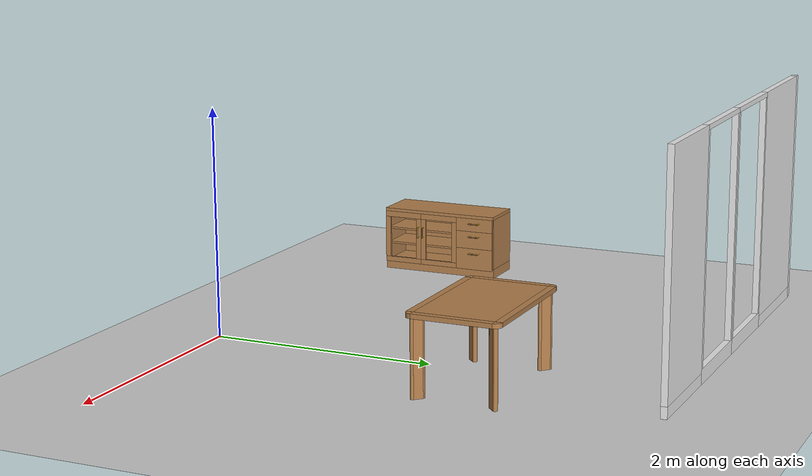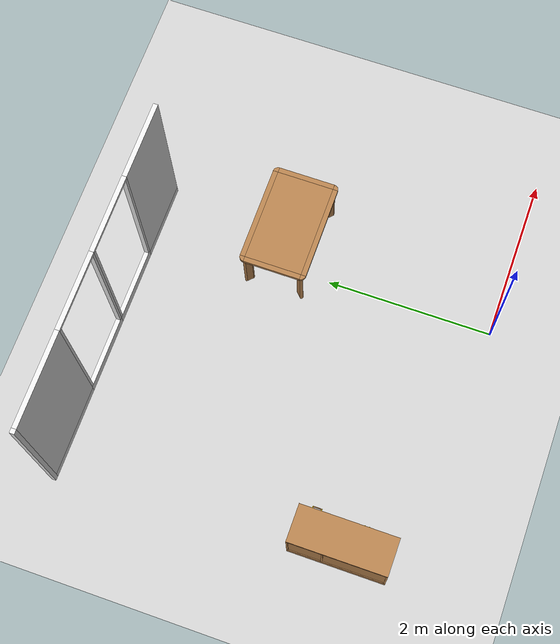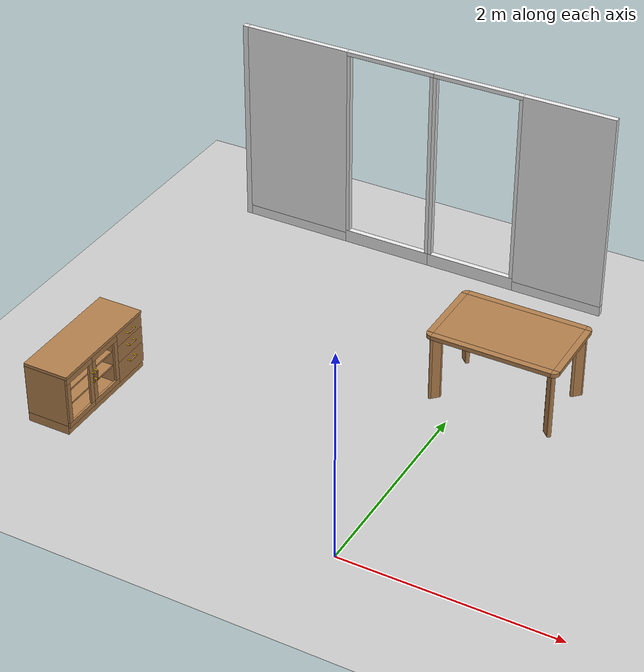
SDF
<sdf version="1.7">
 <world name="default">
  <model name="ground_plane">
   <static>1</static>
   <link name="link">
    <collision name="collision">
     <geometry><plane><normal>0 0 1</normal><size>100 100</size></plane></geometry>
     <surface>
      <contact><collide_bitmask>65535</collide_bitmask></contact>
      <friction><ode><mu>100</mu><mu2>50</mu2></ode></friction>
     </surface>
    </collision>
    <visual name="visual">
     <cast_shadows>0</cast_shadows>
     <geometry><plane><normal>0 0 1</normal><size>100 100</size></plane></geometry>
     <material>
      <script><uri>file://media/materials/scripts/gazebo.material</uri><name>Gazebo/Grey</name></script>
     </material>
    </visual>
   </link>
  </model>
  <model name="wall_right_d">
   <link name="link">
    <inertial>
     <mass>50</mass>
     <inertia><ixx>1</ixx><ixy>0</ixy><ixz>0</ixz><iyy>1</iyy><iyz>0</iyz><izz>1</izz></inertia>
    </inertial>
    <visual name="bottom_frame">
     <pose>0 0 0.05 0 -0 0</pose>
     <geometry><box><size>0.055 0.9 0.1</size></box></geometry>
     <material>
      <script><uri>model://base_materials/color/scripts</uri><name>hsr_color/white</name></script>
     </material>
    </visual>
    <collision name="collision_bottom_frame">
     <pose>0 0 0.05 0 -0 0</pose>
     <geometry><box><size>0.055 0.9 0.1</size></box></geometry>
    </collision>
    <visual name="wall">
     <pose>0 0 1.095 0 -0 0</pose>
     <geometry><box><size>0.055 0.9 1.99</size></box></geometry>
     <material>
      <script>
       <uri>model://base_materials/wall/scripts</uri>
       <uri>model://base_materials/wall/textures</uri>
       <name>wall/white_noise</name>
      </script>
     </material>
    </visual>
    <collision name="collision_wall">
     <pose>0 0 1.095 0 -0 0</pose>
     <geometry><box><size>0.055 0.9 1.99</size></box></geometry>
    </collision>
    <velocity_decay><linear>0</linear><angular>0</angular></velocity_decay>
   </link>
   <static>1</static>
   <pose>0.0875 4.175 0 0 -0 1.5708</pose>
  </model>
  <model name="wall_right_e">
   <link name="link">
    <inertial>
     <mass>50</mass>
     <inertia><ixx>1</ixx><ixy>0</ixy><ixz>0</ixz><iyy>1</iyy><iyz>0</iyz><izz>1</izz></inertia>
    </inertial>
    <visual name="bottom_frame">
     <pose>0 0 0.065 0 -0 0</pose>
     <geometry><box><size>0.055 0.9 0.13</size></box></geometry>
     <material>
      <script><uri>model://base_materials/color/scripts</uri><name>hsr_color/white</name></script>
     </material>
    </visual>
    <collision name="collision_bottom_frame">
     <pose>0 0 0.065 0 -0 0</pose>
     <geometry><box><size>0.055 0.9 0.13</size></box></geometry>
    </collision>
    <visual name="right_frame">
     <pose>0 0.4325 1.09 0 -0 0</pose>
     <geometry><box><size>0.055 0.035 1.92</size></box></geometry>
     <material>
      <script><uri>model://base_materials/color/scripts</uri><name>hsr_color/white</name></script>
     </material>
    </visual>
    <collision name="collision_right_frame">
     <pose>0 0.4325 1.09 0 -0 0</pose>
     <geometry><box><size>0.055 0.035 1.92</size></box></geometry>
    </collision>
    <visual name="left_frame">
     <pose>0 -0.4325 1.09 0 -0 0</pose>
     <geometry><box><size>0.055 0.035 1.92</size></box></geometry>
     <material>
      <script><uri>model://base_materials/color/scripts</uri><name>hsr_color/white</name></script>
     </material>
    </visual>
    <collision name="collision_left_frame">
     <pose>0 -0.4325 1.09 0 -0 0</pose>
     <geometry><box><size>0.055 0.035 1.92</size></box></geometry>
    </collision>
    <visual name="top_frame">
     <pose>0 0 2.07 0 -0 0</pose>
     <geometry><box><size>0.055 0.9 0.04</size></box></geometry>
     <material>
      <script><uri>model://base_materials/color/scripts</uri><name>hsr_color/white</name></script>
     </material>
    </visual>
    <collision name="collision_top_frame">
     <pose>0 0 2.07 0 -0 0</pose>
     <geometry><box><size>0.055 0.9 0.04</size></box></geometry>
    </collision>
    <velocity_decay><linear>0</linear><angular>0</angular></velocity_decay>
   </link>
   <static>1</static>
   <pose>-0.8125 4.175 0 0 -0 1.5708</pose>
  </model>
  <model name="wall_right_f">
   <link name="link">
    <inertial>
     <mass>50</mass>
     <inertia><ixx>1</ixx><ixy>0</ixy><ixz>0</ixz><iyy>1</iyy><iyz>0</iyz><izz>1</izz></inertia>
    </inertial>
    <visual name="bottom_frame">
     <pose>0 0 0.065 0 -0 0</pose>
     <geometry><box><size>0.055 0.9 0.13</size></box></geometry>
     <material>
      <script><uri>model://base_materials/color/scripts</uri><name>hsr_color/white</name></script>
     </material>
    </visual>
    <collision name="collision_bottom_frame">
     <pose>0 0 0.065 0 -0 0</pose>
     <geometry><box><size>0.055 0.9 0.13</size></box></geometry>
    </collision>
    <visual name="right_frame">
     <pose>0 0.4325 1.09 0 -0 0</pose>
     <geometry><box><size>0.055 0.035 1.92</size></box></geometry>
     <material>
      <script><uri>model://base_materials/color/scripts</uri><name>hsr_color/white</name></script>
     </material>
    </visual>
    <collision name="collision_right_frame">
     <pose>0 0.4325 1.09 0 -0 0</pose>
     <geometry><box><size>0.055 0.035 1.92</size></box></geometry>
    </collision>
    <visual name="left_frame">
     <pose>0 -0.4325 1.09 0 -0 0</pose>
     <geometry><box><size>0.055 0.035 1.92</size></box></geometry>
     <material>
      <script><uri>model://base_materials/color/scripts</uri><name>hsr_color/white</name></script>
     </material>
    </visual>
    <collision name="collision_left_frame">
     <pose>0 -0.4325 1.09 0 -0 0</pose>
     <geometry><box><size>0.055 0.035 1.92</size></box></geometry>
    </collision>
    <visual name="top_frame">
     <pose>0 0 2.07 0 -0 0</pose>
     <geometry><box><size>0.055 0.9 0.04</size></box></geometry>
     <material>
      <script><uri>model://base_materials/color/scripts</uri><name>hsr_color/white</name></script>
     </material>
    </visual>
    <collision name="collision_top_frame">
     <pose>0 0 2.07 0 -0 0</pose>
     <geometry><box><size>0.055 0.9 0.04</size></box></geometry>
    </collision>
    <velocity_decay><linear>0</linear><angular>0</angular></velocity_decay>
   </link>
   <static>1</static>
   <pose>-1.7125 4.175 0 0 -0 1.5708</pose>
  </model>
  <model name="wall_right_g">
   <link name="link">
    <inertial>
     <mass>50</mass>
     <inertia><ixx>1</ixx><ixy>0</ixy><ixz>0</ixz><iyy>1</iyy><iyz>0</iyz><izz>1</izz></inertia>
    </inertial>
    <visual name="bottom_frame">
     <pose>0 0 0.05 0 -0 0</pose>
     <geometry><box><size>0.055 1.075 0.1</size></box></geometry>
     <material>
      <script><uri>model://base_materials/color/scripts</uri><name>hsr_color/white</name></script>
     </material>
    </visual>
    <collision name="collision_bottom_frame">
     <pose>0 0 0.05 0 -0 0</pose>
     <geometry><box><size>0.055 1.075 0.1</size></box></geometry>
    </collision>
    <visual name="wall">
     <pose>0 0 1.095 0 -0 0</pose>
     <geometry><box><size>0.055 1.075 1.99</size></box></geometry>
     <material>
      <script>
       <uri>model://base_materials/wall/scripts</uri>
       <uri>model://base_materials/wall/textures</uri>
       <name>wall/white_noise</name>
      </script>
     </material>
    </visual>
    <collision name="collision_wall">
     <pose>0 0 1.095 0 -0 0</pose>
     <geometry><box><size>0.055 1.075 1.99</size></box></geometry>
    </collision>
    <velocity_decay><linear>0</linear><angular>0</angular></velocity_decay>
   </link>
   <static>1</static>
   <pose>-2.7 4.175 0 0 -0 1.5708</pose>
  </model>
  <model name="wall_back_a">
   <link name="link">
    <inertial>
     <mass>50</mass>
     <inertia><ixx>1</ixx><ixy>0</ixy><ixz>0</ixz><iyy>1</iyy><iyz>0</iyz><izz>1</izz></inertia>
    </inertial>
    <visual name="_frame">
     <pose>0 0 1.045 0 -0 0</pose>
     <geometry><box><size>0.055 0.055 2.09</size></box></geometry>
     <material>
      <script><uri>model://base_materials/color/scripts</uri><name>hsr_color/white</name></script>
     </material>
    </visual>
    <collision name="collision_frame">
     <pose>0 0 1.045 0 -0 0</pose>
     <geometry><box><size>0.055 0.055 2.09</size></box></geometry>
    </collision>
    <velocity_decay><linear>0</linear><angular>0</angular></velocity_decay>
   </link>
   <static>1</static>
   <pose>-3.265 4.175 0 0 -0 0</pose>
  </model>
  <model name="kitchen_table">
   <link name="link">
    <inertial>
     <mass>10</mass>
     <inertia><ixx>1</ixx><ixy>0</ixy><ixz>0</ixz><iyy>1</iyy><iyz>0</iyz><izz>1</izz></inertia>
    </inertial>
    <visual name="center_board">
     <pose>0 0 0.68 0 -0 0</pose>
     <geometry><box><size>0.68 1.13 0.04</size></box></geometry>
     <material>
      <script><uri>model://base_materials/wood/scripts/wood.material</uri><name>base_materials/wood</name></script>
     </material>
    </visual>
    <collision name="collision_center_board">
     <pose>0 0 0.68 0 -0 0</pose>
     <geometry><box><size>0.68 1.13 0.04</size></box></geometry>
    </collision>
    <visual name="front_board">
     <pose>0.37 0 0.68 0 -0 0</pose>
     <geometry><box><size>0.06 1.13 0.04</size></box></geometry>
     <material>
      <script><uri>model://base_materials/wood/scripts/wood.material</uri><name>base_materials/wood</name></script>
     </material>
    </visual>
    <collision name="collision_front_board">
     <pose>0.37 0 0.68 0 -0 0</pose>
     <geometry><box><size>0.06 1.13 0.04</size></box></geometry>
    </collision>
    <visual name="back_board">
     <pose>-0.37 0 0.68 0 -0 0</pose>
     <geometry><box><size>0.06 1.13 0.04</size></box></geometry>
     <material>
      <script><uri>model://base_materials/wood/scripts/wood.material</uri><name>base_materials/wood</name></script>
     </material>
    </visual>
    <collision name="collision_back_board">
     <pose>-0.37 0 0.68 0 -0 0</pose>
     <geometry><box><size>0.06 1.13 0.04</size></box></geometry>
    </collision>
    <visual name="right_board">
     <pose>0 0.595 0.68 0 -0 0</pose>
     <geometry><box><size>0.68 0.06 0.04</size></box></geometry>
     <material>
      <script><uri>model://base_materials/wood/scripts/wood.material</uri><name>base_materials/wood</name></script>
     </material>
    </visual>
    <collision name="collision_right_board">
     <pose>0 0.595 0.68 0 -0 0</pose>
     <geometry><box><size>0.68 0.06 0.04</size></box></geometry>
    </collision>
    <visual name="left_board">
     <pose>0 -0.595 0.68 0 -0 0</pose>
     <geometry><box><size>0.68 0.06 0.04</size></box></geometry>
     <material>
      <script><uri>model://base_materials/wood/scripts/wood.material</uri><name>base_materials/wood</name></script>
     </material>
    </visual>
    <collision name="collision_left_board">
     <pose>0 -0.595 0.68 0 -0 0</pose>
     <geometry><box><size>0.68 0.06 0.04</size></box></geometry>
    </collision>
    <visual name="front_right_corner_board">
     <pose>0.34 0.565 0.68 0 -0 0</pose>
     <geometry><cylinder><radius>0.06</radius><length>0.039</length></cylinder></geometry>
     <material>
      <script><uri>model://base_materials/wood/scripts/wood.material</uri><name>base_materials/wood</name></script>
     </material>
    </visual>
    <collision name="collision_front_right_corner_board">
     <pose>0.34 0.565 0.68 0 -0 0</pose>
     <geometry><cylinder><radius>0.06</radius><length>0.039</length></cylinder></geometry>
    </collision>
    <visual name="front_left_corner_board">
     <pose>0.34 -0.565 0.68 0 -0 0</pose>
     <geometry><cylinder><radius>0.06</radius><length>0.039</length></cylinder></geometry>
     <material>
      <script><uri>model://base_materials/wood/scripts/wood.material</uri><name>base_materials/wood</name></script>
     </material>
    </visual>
    <collision name="collision_front_left_corner_board">
     <pose>0.34 -0.565 0.68 0 -0 0</pose>
     <geometry><cylinder><radius>0.06</radius><length>0.039</length></cylinder></geometry>
    </collision>
    <visual name="front_back_right_corner_board">
     <pose>-0.34 0.565 0.68 0 -0 0</pose>
     <geometry><cylinder><radius>0.06</radius><length>0.039</length></cylinder></geometry>
     <material>
      <script><uri>model://base_materials/wood/scripts/wood.material</uri><name>base_materials/wood</name></script>
     </material>
    </visual>
    <collision name="collision_back_right_corner_board">
     <pose>-0.34 0.565 0.68 0 -0 0</pose>
     <geometry><cylinder><radius>0.06</radius><length>0.039</length></cylinder></geometry>
    </collision>
    <visual name="front_back_left_corner_board">
     <pose>-0.34 -0.565 0.68 0 -0 0</pose>
     <geometry><cylinder><radius>0.06</radius><length>0.039</length></cylinder></geometry>
     <material>
      <script><uri>model://base_materials/wood/scripts/wood.material</uri><name>base_materials/wood</name></script>
     </material>
    </visual>
    <collision name="collision_back_left_corner_board">
     <pose>-0.34 -0.565 0.68 0 -0 0</pose>
     <geometry><cylinder><radius>0.06</radius><length>0.039</length></cylinder></geometry>
    </collision>
    <visual name="front_left_corner_frame1">
     <pose>0.345858 -0.57086 0.33 0 -0 0</pose>
     <geometry><cylinder><radius>0.02</radius><length>0.66</length></cylinder></geometry>
     <material>
      <script><uri>model://base_materials/wood/scripts/wood.material</uri><name>base_materials/wood</name></script>
     </material>
    </visual>
    <collision name="collision_front_left_corner_frame1">
     <pose>0.345858 -0.57086 0.33 0 -0 0</pose>
     <geometry><cylinder><radius>0.02</radius><length>0.66</length></cylinder></geometry>
    </collision>
    <visual name="front_left_corner_frame2">
     <pose>0.317574 -0.54257 0.33 0 -0 0.7854</pose>
     <geometry><box><size>0.04 0.08 0.66</size></box></geometry>
     <material>
      <script><uri>model://base_materials/wood/scripts/wood.material</uri><name>base_materials/wood</name></script>
     </material>
    </visual>
    <collision name="collision_front_left_corner_frame2">
     <pose>0.317574 -0.54257 0.33 0 -0 0.7854</pose>
     <geometry><box><size>0.04 0.08 0.66</size></box></geometry>
    </collision>
    <visual name="front_left_corner_frame3">
     <pose>0.289289 -0.51429 0.33 0 -0 0</pose>
     <geometry><cylinder><radius>0.02</radius><length>0.66</length></cylinder></geometry>
     <material>
      <script><uri>model://base_materials/wood/scripts/wood.material</uri><name>base_materials/wood</name></script>
     </material>
    </visual>
    <collision name="collision_front_left_corner_frame3">
     <pose>0.289289 -0.51429 0.33 0 -0 0</pose>
     <geometry><cylinder><radius>0.02</radius><length>0.66</length></cylinder></geometry>
    </collision>
    <visual name="front_right_corner_frame1">
     <pose>0.345858 0.57086 0.33 0 -0 0</pose>
     <geometry><cylinder><radius>0.02</radius><length>0.66</length></cylinder></geometry>
     <material>
      <script><uri>model://base_materials/wood/scripts/wood.material</uri><name>base_materials/wood</name></script>
     </material>
    </visual>
    <collision name="collision_front_right_corner_frame1">
     <pose>0.345858 0.57086 0.33 0 -0 0</pose>
     <geometry><cylinder><radius>0.02</radius><length>0.66</length></cylinder></geometry>
    </collision>
    <visual name="front_right_corner_frame2">
     <pose>0.317574 0.54257 0.33 0 0 -0.7854</pose>
     <geometry><box><size>0.04 0.08 0.66</size></box></geometry>
     <material>
      <script><uri>model://base_materials/wood/scripts/wood.material</uri><name>base_materials/wood</name></script>
     </material>
    </visual>
    <collision name="collision_front_right_corner_frame2">
     <pose>0.317574 0.54257 0.33 0 0 -0.7854</pose>
     <geometry><box><size>0.04 0.08 0.66</size></box></geometry>
    </collision>
    <visual name="front_right_corner_frame3">
     <pose>0.289289 0.51429 0.33 0 -0 0</pose>
     <geometry><cylinder><radius>0.02</radius><length>0.66</length></cylinder></geometry>
     <material>
      <script><uri>model://base_materials/wood/scripts/wood.material</uri><name>base_materials/wood</name></script>
     </material>
    </visual>
    <collision name="collision_front_right_corner_frame3">
     <pose>0.289289 0.51429 0.33 0 -0 0</pose>
     <geometry><cylinder><radius>0.02</radius><length>0.66</length></cylinder></geometry>
    </collision>
    <visual name="back_left_corner_frame1">
     <pose>-0.345858 -0.57086 0.33 0 -0 0</pose>
     <geometry><cylinder><radius>0.02</radius><length>0.66</length></cylinder></geometry>
     <material>
      <script><uri>model://base_materials/wood/scripts/wood.material</uri><name>base_materials/wood</name></script>
     </material>
    </visual>
    <collision name="collision_back_left_corner_frame1">
     <pose>-0.345858 -0.57086 0.33 0 -0 0</pose>
     <geometry><cylinder><radius>0.02</radius><length>0.66</length></cylinder></geometry>
    </collision>
    <visual name="back_left_corner_frame2">
     <pose>-0.317574 -0.54257 0.33 0 0 -0.7854</pose>
     <geometry><box><size>0.04 0.08 0.66</size></box></geometry>
     <material>
      <script><uri>model://base_materials/wood/scripts/wood.material</uri><name>base_materials/wood</name></script>
     </material>
    </visual>
    <collision name="collision_back_left_corner_frame2">
     <pose>-0.317574 -0.54257 0.33 0 0 -0.7854</pose>
     <geometry><box><size>0.04 0.08 0.66</size></box></geometry>
    </collision>
    <visual name="back_left_corner_frame3">
     <pose>-0.289289 -0.51429 0.33 0 -0 0</pose>
     <geometry><cylinder><radius>0.02</radius><length>0.66</length></cylinder></geometry>
     <material>
      <script><uri>model://base_materials/wood/scripts/wood.material</uri><name>base_materials/wood</name></script>
     </material>
    </visual>
    <collision name="collision_back_left_corner_frame3">
     <pose>-0.289289 -0.51429 0.33 0 -0 0</pose>
     <geometry><cylinder><radius>0.02</radius><length>0.66</length></cylinder></geometry>
    </collision>
    <visual name="back_right_corner_frame1">
     <pose>-0.345858 0.57086 0.33 0 -0 0</pose>
     <geometry><cylinder><radius>0.02</radius><length>0.66</length></cylinder></geometry>
     <material>
      <script><uri>model://base_materials/wood/scripts/wood.material</uri><name>base_materials/wood</name></script>
     </material>
    </visual>
    <collision name="collision_back_right_corner_frame1">
     <pose>-0.345858 0.57086 0.33 0 -0 0</pose>
     <geometry><cylinder><radius>0.02</radius><length>0.66</length></cylinder></geometry>
    </collision>
    <visual name="back_right_corner_frame2">
     <pose>-0.317574 0.54257 0.33 0 -0 0.7854</pose>
     <geometry><box><size>0.04 0.08 0.66</size></box></geometry>
     <material>
      <script><uri>model://base_materials/wood/scripts/wood.material</uri><name>base_materials/wood</name></script>
     </material>
    </visual>
    <collision name="collision_back_right_corner_frame2">
     <pose>-0.317574 0.54257 0.33 0 -0 0.7854</pose>
     <geometry><box><size>0.04 0.08 0.66</size></box></geometry>
    </collision>
    <visual name="back_right_corner_frame3">
     <pose>-0.289289 0.51429 0.33 0 -0 0</pose>
     <geometry><cylinder><radius>0.02</radius><length>0.66</length></cylinder></geometry>
     <material>
      <script><uri>model://base_materials/wood/scripts/wood.material</uri><name>base_materials/wood</name></script>
     </material>
    </visual>
    <collision name="collision_back_right_corner_frame3">
     <pose>-0.289289 0.51429 0.33 0 -0 0</pose>
     <geometry><cylinder><radius>0.02</radius><length>0.66</length></cylinder></geometry>
    </collision>
    <velocity_decay><linear>0</linear><angular>0</angular></velocity_decay>
   </link>
   <static>1</static>
   <pose>0.29 2.6 0 0 0 -1.5708</pose>
  </model>
  <model name="living_sideboard">
   <link name="link">
    <inertial>
     <mass>10</mass>
     <inertia><ixx>1</ixx><ixy>0</ixy><ixz>0</ixz><iyy>1</iyy><iyz>0</iyz><izz>1</izz></inertia>
    </inertial>
    <visual name="left_board">
     <pose>-0.23 0.01 0.3375 0 -0 0</pose>
     <geometry><box><size>0.42 0.02 0.495</size></box></geometry>
     <material>
      <script><uri>model://base_materials/wood/scripts/wood.material</uri><name>base_materials/wood</name></script>
     </material>
    </visual>
    <collision name="collision_left_board">
     <pose>-0.23 0.01 0.3375 0 -0 0</pose>
     <geometry><box><size>0.42 0.02 0.495</size></box></geometry>
    </collision>
    <visual name="back_board">
     <pose>-0.42 0.575 0.2925 0 -0 0</pose>
     <geometry><box><size>0.02 1.11 0.585</size></box></geometry>
     <material>
      <script><uri>model://base_materials/wood/scripts/wood.material</uri><name>base_materials/wood</name></script>
     </material>
    </visual>
    <collision name="collision_back_board">
     <pose>-0.42 0.575 0.2925 0 -0 0</pose>
     <geometry><box><size>0.02 1.11 0.585</size></box></geometry>
    </collision>
    <visual name="right_board">
     <pose>-0.23 1.14 0.3375 0 -0 0</pose>
     <geometry><box><size>0.42 0.02 0.495</size></box></geometry>
     <material>
      <script><uri>model://base_materials/wood/scripts/wood.material</uri><name>base_materials/wood</name></script>
     </material>
    </visual>
    <collision name="collision_right_board">
     <pose>-0.23 1.14 0.3375 0 -0 0</pose>
     <geometry><box><size>0.42 0.02 0.495</size></box></geometry>
    </collision>
    <visual name="center_vertical_board1">
     <pose>-0.23 0.74 0.3375 0 -0 0</pose>
     <geometry><box><size>0.42 0.02 0.495</size></box></geometry>
     <material>
      <script><uri>model://base_materials/wood/scripts/wood.material</uri><name>base_materials/wood</name></script>
     </material>
    </visual>
    <collision name="collision_center_vertical_board1">
     <pose>-0.23 0.74 0.3375 0 -0 0</pose>
     <geometry><box><size>0.42 0.02 0.495</size></box></geometry>
    </collision>
    <visual name="top_board">
     <pose>-0.22 0.575 0.6 0 -0 0</pose>
     <geometry><box><size>0.44 1.15 0.03</size></box></geometry>
     <material>
      <script><uri>model://base_materials/wood/scripts/wood.material</uri><name>base_materials/wood</name></script>
     </material>
    </visual>
    <collision name="collision_top_board">
     <pose>-0.22 0.575 0.6 0 -0 0</pose>
     <geometry><box><size>0.44 1.15 0.03</size></box></geometry>
    </collision>
    <visual name="bottom_board">
     <pose>-0.23 0.575 0.045 0 -0 0</pose>
     <geometry><box><size>0.42 1.15 0.09</size></box></geometry>
     <material>
      <script><uri>model://base_materials/wood/scripts/wood.material</uri><name>base_materials/wood</name></script>
     </material>
    </visual>
    <collision name="collision_bottom_board">
     <pose>-0.23 0.575 0.045 0 -0 0</pose>
     <geometry><box><size>0.42 1.15 0.09</size></box></geometry>
    </collision>
    <visual name="1st_shelf">
     <pose>-0.225 0.37 0.259 0 -0 0</pose>
     <geometry><box><size>0.36 0.72 0.018</size></box></geometry>
     <material>
      <script><uri>model://base_materials/wood/scripts/wood.material</uri><name>base_materials/wood</name></script>
     </material>
    </visual>
    <collision name="collision_1st_shelf">
     <pose>-0.225 0.37 0.259 0 -0 0</pose>
     <geometry><box><size>0.36 0.72 0.018</size></box></geometry>
    </collision>
    <visual name="2nd_shelf">
     <pose>-0.225 0.37 0.407 0 -0 0</pose>
     <geometry><box><size>0.36 0.72 0.018</size></box></geometry>
     <material>
      <script><uri>model://base_materials/wood/scripts/wood.material</uri><name>base_materials/wood</name></script>
     </material>
    </visual>
    <collision name="collision_2nd_shelf">
     <pose>-0.225 0.37 0.407 0 -0 0</pose>
     <geometry><box><size>0.36 0.72 0.018</size></box></geometry>
    </collision>
    <visual name="1st_drawer">
     <pose>-0.2025 0.95 0.52 0 -0 0</pose>
     <geometry><box><size>0.405 0.38 0.13</size></box></geometry>
     <material>
      <script><uri>model://base_materials/wood/scripts/wood.material</uri><name>base_materials/wood</name></script>
     </material>
    </visual>
    <collision name="collision_1st_drawer">
     <pose>-0.2025 0.95 0.52 0 -0 0</pose>
     <geometry><box><size>0.405 0.38 0.13</size></box></geometry>
    </collision>
    <visual name="1st_drawer_handle_l1">
     <pose>0.015 0.9015 0.535 3.14159 1.57079 3.14159</pose>
     <geometry><cylinder><radius>0.006</radius><length>0.03</length></cylinder></geometry>
     <material>
      <ambient>1 0.84314 0 1</ambient>
      <diffuse>1 0.84314 0 1</diffuse>
      <specular>0.1 0.1 0.1 1</specular>
     </material>
    </visual>
    <collision name="collision_1st_drawer_handle_l1">
     <pose>0.015 0.9015 0.535 3.14159 1.57079 3.14159</pose>
     <geometry><cylinder><radius>0.006</radius><length>0.03</length></cylinder></geometry>
    </collision>
    <visual name="1st_drawer_handle_l2">
     <pose>0.03 0.9015 0.535 0 -0 0</pose>
     <geometry><sphere><radius>0.006</radius></sphere></geometry>
     <material>
      <ambient>1 0.84314 0 1</ambient>
      <diffuse>1 0.84314 0 1</diffuse>
      <specular>0.1 0.1 0.1 1</specular>
     </material>
    </visual>
    <collision name="collision_1st_drawer_handle_l2">
     <pose>0.03 0.9015 0.535 0 -0 0</pose>
     <geometry><sphere><radius>0.006</radius></sphere></geometry>
    </collision>
    <visual name="1st_drawer_handle_r1">
     <pose>0.015 0.9985 0.535 3.14159 1.57079 3.14159</pose>
     <geometry><cylinder><radius>0.006</radius><length>0.03</length></cylinder></geometry>
     <material>
      <ambient>1 0.84314 0 1</ambient>
      <diffuse>1 0.84314 0 1</diffuse>
      <specular>0.1 0.1 0.1 1</specular>
     </material>
    </visual>
    <collision name="collision_1st_drawer_handle_r1">
     <pose>0.015 0.9985 0.535 3.14159 1.57079 3.14159</pose>
     <geometry><cylinder><radius>0.006</radius><length>0.03</length></cylinder></geometry>
    </collision>
    <visual name="1st_drawer_handle_r2">
     <pose>0.03 0.9985 0.535 0 -0 0</pose>
     <geometry><sphere><radius>0.006</radius></sphere></geometry>
     <material>
      <ambient>1 0.84314 0 1</ambient>
      <diffuse>1 0.84314 0 1</diffuse>
      <specular>0.1 0.1 0.1 1</specular>
     </material>
    </visual>
    <collision name="collision_1st_drawer_handle_r2">
     <pose>0.03 0.9985 0.535 0 -0 0</pose>
     <geometry><sphere><radius>0.006</radius></sphere></geometry>
    </collision>
    <visual name="1st_drawer_handle_center">
     <pose>0.03 0.95 0.535 1.5708 -0 0</pose>
     <geometry><cylinder><radius>0.006</radius><length>0.097</length></cylinder></geometry>
     <material>
      <script><uri>model://base_materials/wood/scripts/wood.material</uri><name>base_materials/wood</name></script>
     </material>
    </visual>
    <collision name="collision_1st_drawer_handle_center">
     <pose>0.03 0.95 0.535 1.5708 -0 0</pose>
     <geometry><cylinder><radius>0.006</radius><length>0.097</length></cylinder></geometry>
    </collision>
    <visual name="2nd_drawer">
     <pose>-0.2025 0.95 0.37 0 -0 0</pose>
     <geometry><box><size>0.405 0.38 0.17</size></box></geometry>
     <material>
      <script><uri>model://base_materials/wood/scripts/wood.material</uri><name>base_materials/wood</name></script>
     </material>
    </visual>
    <collision name="collision_2nd_drawer">
     <pose>-0.2025 0.95 0.37 0 -0 0</pose>
     <geometry><box><size>0.405 0.38 0.17</size></box></geometry>
    </collision>
    <visual name="2nd_drawer_handle_l1">
     <pose>0.015 0.9015 0.405 3.14159 1.57079 3.14159</pose>
     <geometry><cylinder><radius>0.006</radius><length>0.03</length></cylinder></geometry>
     <material>
      <ambient>1 0.84314 0 1</ambient>
      <diffuse>1 0.84314 0 1</diffuse>
      <specular>0.1 0.1 0.1 1</specular>
     </material>
    </visual>
    <collision name="collision_2nd_drawer_handle_l1">
     <pose>0.015 0.9015 0.405 3.14159 1.57079 3.14159</pose>
     <geometry><cylinder><radius>0.006</radius><length>0.03</length></cylinder></geometry>
    </collision>
    <visual name="2nd_drawer_handle_l2">
     <pose>0.03 0.9015 0.405 0 -0 0</pose>
     <geometry><sphere><radius>0.006</radius></sphere></geometry>
     <material>
      <ambient>1 0.84314 0 1</ambient>
      <diffuse>1 0.84314 0 1</diffuse>
      <specular>0.1 0.1 0.1 1</specular>
     </material>
    </visual>
    <collision name="collision_2nd_drawer_handle_l2">
     <pose>0.03 0.9015 0.405 0 -0 0</pose>
     <geometry><sphere><radius>0.006</radius></sphere></geometry>
    </collision>
    <visual name="2nd_drawer_handle_r1">
     <pose>0.015 0.9985 0.405 3.14159 1.57079 3.14159</pose>
     <geometry><cylinder><radius>0.006</radius><length>0.03</length></cylinder></geometry>
     <material>
      <ambient>1 0.84314 0 1</ambient>
      <diffuse>1 0.84314 0 1</diffuse>
      <specular>0.1 0.1 0.1 1</specular>
     </material>
    </visual>
    <collision name="collision_2nd_drawer_handle_r1">
     <pose>0.015 0.9985 0.405 3.14159 1.57079 3.14159</pose>
     <geometry><cylinder><radius>0.006</radius><length>0.03</length></cylinder></geometry>
    </collision>
    <visual name="2nd_drawer_handle_r2">
     <pose>0.03 0.9985 0.405 0 -0 0</pose>
     <geometry><sphere><radius>0.006</radius></sphere></geometry>
     <material>
      <ambient>1 0.84314 0 1</ambient>
      <diffuse>1 0.84314 0 1</diffuse>
      <specular>0.1 0.1 0.1 1</specular>
     </material>
    </visual>
    <collision name="collision_2nd_drawer_handle_r2">
     <pose>0.03 0.9985 0.405 0 -0 0</pose>
     <geometry><sphere><radius>0.006</radius></sphere></geometry>
    </collision>
    <visual name="2nd_drawer_handle_center">
     <pose>0.03 0.95 0.405 1.5708 -0 0</pose>
     <geometry><cylinder><radius>0.006</radius><length>0.097</length></cylinder></geometry>
     <material>
      <script><uri>model://base_materials/wood/scripts/wood.material</uri><name>base_materials/wood</name></script>
     </material>
    </visual>
    <collision name="collision_2nd_drawer_handle_center">
     <pose>0.03 0.95 0.405 1.5708 -0 0</pose>
     <geometry><cylinder><radius>0.006</radius><length>0.097</length></cylinder></geometry>
    </collision>
    <visual name="3rd_drawer">
     <pose>-0.2025 0.95 0.18 0 -0 0</pose>
     <geometry><box><size>0.405 0.38 0.21</size></box></geometry>
     <material>
      <script><uri>model://base_materials/wood/scripts/wood.material</uri><name>base_materials/wood</name></script>
     </material>
    </visual>
    <collision name="collision_3rd_drawer">
     <pose>-0.2025 0.95 0.18 0 -0 0</pose>
     <geometry><box><size>0.405 0.38 0.21</size></box></geometry>
    </collision>
    <visual name="3rd_drawer_handle_l1">
     <pose>0.015 0.9015 0.235 3.14159 1.57079 3.14159</pose>
     <geometry><cylinder><radius>0.006</radius><length>0.03</length></cylinder></geometry>
     <material>
      <ambient>1 0.84314 0 1</ambient>
      <diffuse>1 0.84314 0 1</diffuse>
      <specular>0.1 0.1 0.1 1</specular>
     </material>
    </visual>
    <collision name="collision_3rd_drawer_handle_l1">
     <pose>0.015 0.9015 0.235 3.14159 1.57079 3.14159</pose>
     <geometry><cylinder><radius>0.006</radius><length>0.03</length></cylinder></geometry>
    </collision>
    <visual name="3rd_drawer_handle_l2">
     <pose>0.03 0.9015 0.235 0 -0 0</pose>
     <geometry><sphere><radius>0.006</radius></sphere></geometry>
     <material>
      <ambient>1 0.84314 0 1</ambient>
      <diffuse>1 0.84314 0 1</diffuse>
      <specular>0.1 0.1 0.1 1</specular>
     </material>
    </visual>
    <collision name="collision_3rd_drawer_handle_l2">
     <pose>0.03 0.9015 0.235 0 -0 0</pose>
     <geometry><sphere><radius>0.006</radius></sphere></geometry>
    </collision>
    <visual name="3rd_drawer_handle_r1">
     <pose>0.015 0.9985 0.235 3.14159 1.57079 3.14159</pose>
     <geometry><cylinder><radius>0.006</radius><length>0.03</length></cylinder></geometry>
     <material>
      <ambient>1 0.84314 0 1</ambient>
      <diffuse>1 0.84314 0 1</diffuse>
      <specular>0.1 0.1 0.1 1</specular>
     </material>
    </visual>
    <collision name="collision_3rd_drawer_handle_r1">
     <pose>0.015 0.9985 0.235 3.14159 1.57079 3.14159</pose>
     <geometry><cylinder><radius>0.006</radius><length>0.03</length></cylinder></geometry>
    </collision>
    <visual name="3rd_drawer_handle_r2">
     <pose>0.03 0.9985 0.235 0 -0 0</pose>
     <geometry><sphere><radius>0.006</radius></sphere></geometry>
     <material>
      <ambient>1 0.84314 0 1</ambient>
      <diffuse>1 0.84314 0 1</diffuse>
      <specular>0.1 0.1 0.1 1</specular>
     </material>
    </visual>
    <collision name="collision_3rd_drawer_handle_r2">
     <pose>0.03 0.9985 0.235 0 -0 0</pose>
     <geometry><sphere><radius>0.006</radius></sphere></geometry>
    </collision>
    <visual name="3rd_drawer_handle_center">
     <pose>0.03 0.95 0.235 1.5708 -0 0</pose>
     <geometry><cylinder><radius>0.006</radius><length>0.097</length></cylinder></geometry>
     <material>
      <script><uri>model://base_materials/wood/scripts/wood.material</uri><name>base_materials/wood</name></script>
     </material>
    </visual>
    <collision name="collision_3rd_drawer_handle_center">
     <pose>0.03 0.95 0.235 1.5708 -0 0</pose>
     <geometry><cylinder><radius>0.006</radius><length>0.097</length></cylinder></geometry>
    </collision>
    <visual name="left_door_left_frame">
     <pose>-0.01 0.025 0.3275 0 -0 0</pose>
     <geometry><box><size>0.02 0.05 0.405</size></box></geometry>
     <material>
      <script><uri>model://base_materials/wood/scripts/wood.material</uri><name>base_materials/wood</name></script>
     </material>
    </visual>
    <collision name="collision_left_door_left_frame">
     <pose>-0.01 0.025 0.3275 0 -0 0</pose>
     <geometry><box><size>0.02 0.05 0.405</size></box></geometry>
    </collision>
    <visual name="left_door_right_frame">
     <pose>-0.01 0.355 0.3275 0 -0 0</pose>
     <geometry><box><size>0.02 0.05 0.405</size></box></geometry>
     <material>
      <script><uri>model://base_materials/wood/scripts/wood.material</uri><name>base_materials/wood</name></script>
     </material>
    </visual>
    <collision name="collision_left_door_right_frame">
     <pose>-0.01 0.355 0.3275 0 -0 0</pose>
     <geometry><box><size>0.02 0.05 0.405</size></box></geometry>
    </collision>
    <visual name="left_door_handle_top1">
     <pose>0.015 0.355 0.4475 3.14159 1.57079 3.14159</pose>
     <geometry><cylinder><radius>0.006</radius><length>0.03</length></cylinder></geometry>
     <material>
      <ambient>1 0.84314 0 1</ambient>
      <diffuse>1 0.84314 0 1</diffuse>
      <specular>0.1 0.1 0.1 1</specular>
     </material>
    </visual>
    <collision name="collision_left_door_handle_top1">
     <pose>0.015 0.355 0.4475 3.14159 1.57079 3.14159</pose>
     <geometry><cylinder><radius>0.006</radius><length>0.03</length></cylinder></geometry>
    </collision>
    <visual name="left_door_handle_top2">
     <pose>0.03 0.355 0.4475 0 -0 0</pose>
     <geometry><sphere><radius>0.006</radius></sphere></geometry>
     <material>
      <ambient>1 0.84314 0 1</ambient>
      <diffuse>1 0.84314 0 1</diffuse>
      <specular>0.1 0.1 0.1 1</specular>
     </material>
    </visual>
    <collision name="collision_left_door_handle_top2">
     <pose>0.03 0.355 0.4475 0 -0 0</pose>
     <geometry><sphere><radius>0.006</radius></sphere></geometry>
    </collision>
    <visual name="left_door_handle_bottom1">
     <pose>0.015 0.355 0.3505 3.14159 1.57079 3.14159</pose>
     <geometry><cylinder><radius>0.006</radius><length>0.03</length></cylinder></geometry>
     <material>
      <ambient>1 0.84314 0 1</ambient>
      <diffuse>1 0.84314 0 1</diffuse>
      <specular>0.1 0.1 0.1 1</specular>
     </material>
    </visual>
    <collision name="collision_left_door_handle_bottom1">
     <pose>0.015 0.355 0.3505 3.14159 1.57079 3.14159</pose>
     <geometry><cylinder><radius>0.006</radius><length>0.03</length></cylinder></geometry>
    </collision>
    <visual name="left_door_handle_bottom2">
     <pose>0.03 0.355 0.3505 0 -0 0</pose>
     <geometry><sphere><radius>0.006</radius></sphere></geometry>
     <material>
      <ambient>1 0.84314 0 1</ambient>
      <diffuse>1 0.84314 0 1</diffuse>
      <specular>0.1 0.1 0.1 1</specular>
     </material>
    </visual>
    <collision name="collision_left_door_handle_bottom2">
     <pose>0.03 0.355 0.3505 0 -0 0</pose>
     <geometry><sphere><radius>0.006</radius></sphere></geometry>
    </collision>
    <visual name="left_door_handle_center">
     <pose>0.03 0.355 0.399 0 -0 0</pose>
     <geometry><cylinder><radius>0.006</radius><length>0.097</length></cylinder></geometry>
     <material>
      <script><uri>model://base_materials/wood/scripts/wood.material</uri><name>base_materials/wood</name></script>
     </material>
    </visual>
    <collision name="collision_left_door_handle_center">
     <pose>0.03 0.355 0.399 0 -0 0</pose>
     <geometry><cylinder><radius>0.006</radius><length>0.097</length></cylinder></geometry>
    </collision>
    <visual name="left_door_top_frame">
     <pose>-0.01 0.19 0.5575 0 -0 0</pose>
     <geometry><box><size>0.02 0.38 0.055</size></box></geometry>
     <material>
      <script><uri>model://base_materials/wood/scripts/wood.material</uri><name>base_materials/wood</name></script>
     </material>
    </visual>
    <collision name="collision_left_door_top_frame">
     <pose>-0.01 0.19 0.5575 0 -0 0</pose>
     <geometry><box><size>0.02 0.38 0.055</size></box></geometry>
    </collision>
    <visual name="left_door_bottom_frame">
     <pose>-0.01 0.19 0.1 0 -0 0</pose>
     <geometry><box><size>0.02 0.38 0.05</size></box></geometry>
     <material>
      <script><uri>model://base_materials/wood/scripts/wood.material</uri><name>base_materials/wood</name></script>
     </material>
    </visual>
    <collision name="collision_left_door_bottom_frame">
     <pose>-0.01 0.19 0.1 0 -0 0</pose>
     <geometry><box><size>0.02 0.38 0.05</size></box></geometry>
    </collision>
    <visual name="right_door_left_frame">
     <pose>-0.01 0.405 0.3275 0 -0 0</pose>
     <geometry><box><size>0.02 0.05 0.405</size></box></geometry>
     <material>
      <script><uri>model://base_materials/wood/scripts/wood.material</uri><name>base_materials/wood</name></script>
     </material>
    </visual>
    <collision name="collision_right_door_left_frame">
     <pose>-0.01 0.405 0.3275 0 -0 0</pose>
     <geometry><box><size>0.02 0.05 0.405</size></box></geometry>
    </collision>
    <visual name="right_door_right_frame">
     <pose>-0.01 0.735 0.3275 0 -0 0</pose>
     <geometry><box><size>0.02 0.05 0.405</size></box></geometry>
     <material>
      <script><uri>model://base_materials/wood/scripts/wood.material</uri><name>base_materials/wood</name></script>
     </material>
    </visual>
    <collision name="collision_right_door_right_frame">
     <pose>-0.01 0.735 0.3275 0 -0 0</pose>
     <geometry><box><size>0.02 0.05 0.405</size></box></geometry>
    </collision>
    <visual name="right_door_top_frame">
     <pose>-0.01 0.57 0.5575 0 -0 0</pose>
     <geometry><box><size>0.02 0.38 0.055</size></box></geometry>
     <material>
      <script><uri>model://base_materials/wood/scripts/wood.material</uri><name>base_materials/wood</name></script>
     </material>
    </visual>
    <collision name="collision_right_door_top_frame">
     <pose>-0.01 0.57 0.5575 0 -0 0</pose>
     <geometry><box><size>0.02 0.38 0.055</size></box></geometry>
    </collision>
    <visual name="right_door_bottom_frame">
     <pose>-0.01 0.57 0.1 0 -0 0</pose>
     <geometry><box><size>0.02 0.38 0.05</size></box></geometry>
     <material>
      <script><uri>model://base_materials/wood/scripts/wood.material</uri><name>base_materials/wood</name></script>
     </material>
    </visual>
    <collision name="collision_right_door_bottom_frame">
     <pose>-0.01 0.57 0.1 0 -0 0</pose>
     <geometry><box><size>0.02 0.38 0.05</size></box></geometry>
    </collision>
    <visual name="right_door_handle_top1">
     <pose>0.015 0.405 0.4475 3.14159 1.57079 3.14159</pose>
     <geometry><cylinder><radius>0.006</radius><length>0.03</length></cylinder></geometry>
     <material>
      <ambient>1 0.84314 0 1</ambient>
      <diffuse>1 0.84314 0 1</diffuse>
      <specular>0.1 0.1 0.1 1</specular>
     </material>
    </visual>
    <collision name="collision_right_door_handle_top1">
     <pose>0.015 0.405 0.4475 3.14159 1.57079 3.14159</pose>
     <geometry><cylinder><radius>0.006</radius><length>0.03</length></cylinder></geometry>
    </collision>
    <visual name="right_door_handle_top2">
     <pose>0.03 0.405 0.4475 0 -0 0</pose>
     <geometry><sphere><radius>0.006</radius></sphere></geometry>
     <material>
      <ambient>1 0.84314 0 1</ambient>
      <diffuse>1 0.84314 0 1</diffuse>
      <specular>0.1 0.1 0.1 1</specular>
     </material>
    </visual>
    <collision name="collision_right_door_handle_top2">
     <pose>0.03 0.405 0.4475 0 -0 0</pose>
     <geometry><sphere><radius>0.006</radius></sphere></geometry>
    </collision>
    <visual name="right_door_handle_bottom1">
     <pose>0.015 0.405 0.3505 3.14159 1.57079 3.14159</pose>
     <geometry><cylinder><radius>0.006</radius><length>0.03</length></cylinder></geometry>
     <material>
      <ambient>1 0.84314 0 1</ambient>
      <diffuse>1 0.84314 0 1</diffuse>
      <specular>0.1 0.1 0.1 1</specular>
     </material>
    </visual>
    <collision name="collision_right_door_handle_bottom1">
     <pose>0.015 0.405 0.3505 3.14159 1.57079 3.14159</pose>
     <geometry><cylinder><radius>0.006</radius><length>0.03</length></cylinder></geometry>
    </collision>
    <visual name="right_door_handle_bottom2">
     <pose>0.03 0.405 0.3505 0 -0 0</pose>
     <geometry><sphere><radius>0.006</radius></sphere></geometry>
     <material>
      <ambient>1 0.84314 0 1</ambient>
      <diffuse>1 0.84314 0 1</diffuse>
      <specular>0.1 0.1 0.1 1</specular>
     </material>
    </visual>
    <collision name="collision_right_door_handle_bottom2">
     <pose>0.03 0.405 0.3505 0 -0 0</pose>
     <geometry><sphere><radius>0.006</radius></sphere></geometry>
    </collision>
    <visual name="right_door_handle_center">
     <pose>0.03 0.405 0.399 0 -0 0</pose>
     <geometry><cylinder><radius>0.006</radius><length>0.097</length></cylinder></geometry>
     <material>
      <script><uri>model://base_materials/wood/scripts/wood.material</uri><name>base_materials/wood</name></script>
     </material>
    </visual>
    <collision name="collision_right_door_handle_center">
     <pose>0.03 0.4 0.399 0 -0 0</pose>
     <geometry><cylinder><radius>0.006</radius><length>0.097</length></cylinder></geometry>
    </collision>
    <velocity_decay><linear>0</linear><angular>0</angular></velocity_decay>
   </link>
   <static>1</static>
   <pose>-2.745 0.265 0 0 -0 0</pose>
  </model>
 </world>
</sdf>
